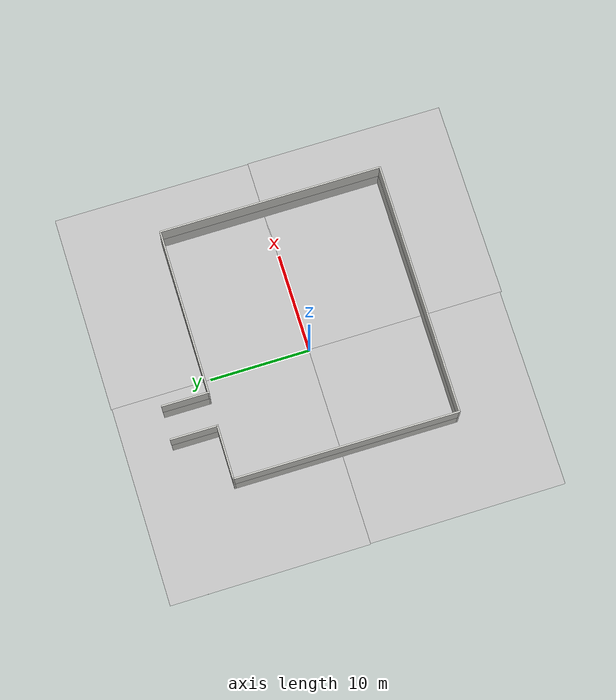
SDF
<sdf version="1.7">
 <world name="default">
  <light name="sun" type="directional">
   <pose>0 0 10 0 -0 0</pose>
   <diffuse>0.8 0.8 0.8 1</diffuse>
   <specular>0.2 0.2 0.2 1</specular>
   <attenuation>
    <range>1000</range>
    <constant>0.9</constant>
    <linear>0.01</linear>
    <quadratic>0.001</quadratic>
   </attenuation>
   <direction>-0.5 0.1 -0.9</direction>
   <spot><inner_angle>0</inner_angle><outer_angle>0</outer_angle><falloff>0</falloff></spot>
  </light>
  <gravity>0 0 -9.8</gravity>
  <magnetic_field>6e-06 2.3e-05 -4.2e-05</magnetic_field>
  <atmosphere type="adiabatic"/>
  <physics type="ode">
   <max_step_size>0.001</max_step_size>
   <real_time_factor>1</real_time_factor>
   <real_time_update_rate>1000</real_time_update_rate>
  </physics>
  <scene><ambient>0.4 0.4 0.4 1</ambient><background>0.7 0.7 0.7 1</background><shadows>1</shadows></scene>
  <audio><device>default</device></audio>
  <spherical_coordinates>
   <surface_model>EARTH_WGS84</surface_model>
   <latitude_deg>0</latitude_deg>
   <longitude_deg>0</longitude_deg>
   <elevation>0</elevation>
   <heading_deg>0</heading_deg>
  </spherical_coordinates>
  <model name="walls">
   <pose>1.76011 1.90455 0 0 -0 1.567</pose>
   <link name="Wall_22">
    <collision name="Wall_22_Collision">
     <geometry><box><size>22.3213 0.15 2.5</size></box></geometry>
     <pose>0 0 1.25 0 -0 0</pose>
    </collision>
    <visual name="Wall_22_Visual">
     <pose>0 0 1.25 0 -0 0</pose>
     <geometry><box><size>22.3213 0.15 2.5</size></box></geometry>
     <material>
      <script><uri>file://media/materials/scripts/gazebo.material</uri><name>Gazebo/CeilingTiled</name></script>
      <ambient>1 1 1 1</ambient>
     </material>
     <meta><layer>0</layer></meta>
    </visual>
    <pose>-2.31337 -12.6443 0 0 -0 0.004826</pose>
   </link>
   <link name="Wall_23">
    <collision name="Wall_23_Collision">
     <geometry><box><size>16.75 0.15 2.5</size></box></geometry>
     <pose>0 0 1.25 0 -0 0</pose>
    </collision>
    <visual name="Wall_23_Visual">
     <pose>0 0 1.25 0 -0 0</pose>
     <geometry><box><size>16.75 0.15 2.5</size></box></geometry>
     <material>
      <script><uri>file://media/materials/scripts/gazebo.material</uri><name>Gazebo/CeilingTiled</name></script>
      <ambient>1 1 1 1</ambient>
     </material>
     <meta><layer>0</layer></meta>
    </visual>
    <pose>8.77214 -4.29078 0 0 -0 1.5708</pose>
   </link>
   <link name="Wall_24">
    <collision name="Wall_24_Collision">
     <geometry><box><size>4.75 0.15 2.5</size></box></geometry>
     <pose>0 0 1.25 0 -0 0</pose>
    </collision>
    <visual name="Wall_24_Visual">
     <pose>0 0 1.25 0 -0 0</pose>
     <geometry><box><size>4.75 0.15 2.5</size></box></geometry>
     <material>
      <script><uri>file://media/materials/scripts/gazebo.material</uri><name>Gazebo/CeilingTiled</name></script>
      <ambient>1 1 1 1</ambient>
     </material>
     <meta><layer>0</layer></meta>
    </visual>
    <pose>11.0721 4.00922 0 0 -0 0</pose>
   </link>
   <link name="Wall_26">
    <collision name="Wall_26_Collision">
     <geometry><box><size>4.75 0.15 2.5</size></box></geometry>
     <pose>0 0 1.25 0 -0 0</pose>
    </collision>
    <visual name="Wall_26_Visual">
     <pose>0 0 1.25 0 -0 0</pose>
     <geometry><box><size>4.75 0.15 2.5</size></box></geometry>
     <material>
      <script><uri>file://media/materials/scripts/gazebo.material</uri><name>Gazebo/CeilingTiled</name></script>
      <ambient>1 1 1 1</ambient>
     </material>
     <meta><layer>0</layer></meta>
    </visual>
    <pose>11.175 7.34814 0 0 -0 3.14159</pose>
   </link>
   <link name="Wall_27">
    <collision name="Wall_27_Collision">
     <geometry><box><size>5.5 0.15 2.5</size></box></geometry>
     <pose>0 0 1.25 0 -0 0</pose>
    </collision>
    <visual name="Wall_27_Visual">
     <pose>0 0 1.25 0 -0 0</pose>
     <geometry><box><size>5.5 0.15 2.5</size></box></geometry>
     <material>
      <script><uri>file://media/materials/scripts/gazebo.material</uri><name>Gazebo/CeilingTiled</name></script>
      <ambient>1 1 1 1</ambient>
     </material>
     <meta><layer>0</layer></meta>
    </visual>
    <pose>8.875 10.0231 0 0 -0 1.5708</pose>
   </link>
   <link name="Wall_28">
    <collision name="Wall_28_Collision">
     <geometry><box><size>22.5 0.15 2.5</size></box></geometry>
     <pose>0 0 1.25 0 -0 0</pose>
    </collision>
    <visual name="Wall_28_Visual">
     <pose>0 0 1.25 0 -0 0</pose>
     <geometry><box><size>22.5 0.15 2.5</size></box></geometry>
     <material>
      <script><uri>file://media/materials/scripts/gazebo.material</uri><name>Gazebo/CeilingTiled</name></script>
      <ambient>1 1 1 1</ambient>
     </material>
     <meta><layer>0</layer></meta>
    </visual>
    <pose>-2.3 12.6981 0 0 -0 3.14159</pose>
   </link>
   <link name="Wall_29">
    <collision name="Wall_29_Collision">
     <geometry><box><size>25.5 0.15 2.5</size></box></geometry>
     <pose>0 0 1.25 0 -0 0</pose>
    </collision>
    <visual name="Wall_29_Visual">
     <pose>0 0 1.25 0 -0 0</pose>
     <geometry><box><size>25.5 0.15 2.5</size></box></geometry>
     <material>
      <script><uri>file://media/materials/scripts/gazebo.material</uri><name>Gazebo/CeilingTiled</name></script>
      <ambient>1 1 1 1</ambient>
     </material>
     <meta><layer>0</layer></meta>
    </visual>
    <pose>-13.475 0.023145 0 0 -0 -1.5708</pose>
   </link>
   <static>1</static>
  </model>
  <model name="Floor_room">
   <link name="main">
    <pose>0 0 0.01 0 -0 0</pose>
    <collision name="main_Collision"><geometry><box><size>20 20 0.001</size></box></geometry></collision>
    <visual name="main_Visual">
     <geometry><box><size>20 20 0.001</size></box></geometry>
     <material>
      <script>
       <uri>model://Floor_room/materials/scripts</uri>
       <uri>model://Floor_room/materials/textures</uri>
       <name>floor_room</name>
      </script>
     </material>
    </visual>
   </link>
   <static>1</static>
   <pose>10.0186 10.1059 0 0 -0 0</pose>
  </model>
  <model name="Floor_room_0">
   <link name="main">
    <pose>0 0 0.01 0 -0 0</pose>
    <collision name="main_Collision"><geometry><box><size>20 20 0.001</size></box></geometry></collision>
    <visual name="main_Visual">
     <geometry><box><size>20 20 0.001</size></box></geometry>
     <material>
      <script>
       <uri>model://Floor_room/materials/scripts</uri>
       <uri>model://Floor_room/materials/textures</uri>
       <name>floor_room</name>
      </script>
     </material>
    </visual>
   </link>
   <static>1</static>
   <pose>10.0732 -9.81871 0 0 -0 0</pose>
  </model>
  <model name="Floor_room_1">
   <link name="main">
    <pose>0 0 0.01 0 -0 0</pose>
    <collision name="main_Collision"><geometry><box><size>20 20 0.001</size></box></geometry></collision>
    <visual name="main_Visual">
     <geometry><box><size>20 20 0.001</size></box></geometry>
     <material>
      <script>
       <uri>model://Floor_room/materials/scripts</uri>
       <uri>model://Floor_room/materials/textures</uri>
       <name>floor_room</name>
      </script>
     </material>
    </visual>
   </link>
   <static>1</static>
   <pose>-9.97267 10.0225 0 0 -0 0</pose>
  </model>
  <model name="Floor_room_2">
   <link name="main">
    <pose>0 0 0.01 0 -0 0</pose>
    <collision name="main_Collision"><geometry><box><size>20 20 0.001</size></box></geometry></collision>
    <visual name="main_Visual">
     <geometry><box><size>20 20 0.001</size></box></geometry>
     <material>
      <script>
       <uri>model://Floor_room/materials/scripts</uri>
       <uri>model://Floor_room/materials/textures</uri>
       <name>floor_room</name>
      </script>
     </material>
    </visual>
   </link>
   <static>1</static>
   <pose>-9.90099 -9.63803 0 0 -0 0</pose>
  </model>
  <model name="walls_0">
   <pose>1.72848 1.90651 2.4873 0 -0 1.56473</pose>
   <link name="Wall_22">
    <collision name="Wall_22_Collision">
     <geometry><box><size>22.3213 0.15 2.5</size></box></geometry>
     <pose>0 0 1.25 0 -0 0</pose>
    </collision>
    <visual name="Wall_22_Visual">
     <pose>0 0 1.25 0 -0 0</pose>
     <geometry><box><size>22.3213 0.15 2.5</size></box></geometry>
     <material>
      <script><uri>file://media/materials/scripts/gazebo.material</uri><name>Gazebo/CeilingTiled</name></script>
      <ambient>1 1 1 1</ambient>
     </material>
     <meta><layer>0</layer></meta>
    </visual>
    <pose>-2.31337 -12.6443 0 0 -0 0.004826</pose>
   </link>
   <link name="Wall_23">
    <collision name="Wall_23_Collision">
     <geometry><box><size>16.75 0.15 2.5</size></box></geometry>
     <pose>0 0 1.25 0 -0 0</pose>
    </collision>
    <visual name="Wall_23_Visual">
     <pose>0 0 1.25 0 -0 0</pose>
     <geometry><box><size>16.75 0.15 2.5</size></box></geometry>
     <material>
      <script><uri>file://media/materials/scripts/gazebo.material</uri><name>Gazebo/CeilingTiled</name></script>
      <ambient>1 1 1 1</ambient>
     </material>
     <meta><layer>0</layer></meta>
    </visual>
    <pose>8.77214 -4.29078 0 0 -0 1.5708</pose>
   </link>
   <link name="Wall_24">
    <collision name="Wall_24_Collision">
     <geometry><box><size>4.75 0.15 2.5</size></box></geometry>
     <pose>0 0 1.25 0 -0 0</pose>
    </collision>
    <visual name="Wall_24_Visual">
     <pose>0 0 1.25 0 -0 0</pose>
     <geometry><box><size>4.75 0.15 2.5</size></box></geometry>
     <material>
      <script><uri>file://media/materials/scripts/gazebo.material</uri><name>Gazebo/CeilingTiled</name></script>
      <ambient>1 1 1 1</ambient>
     </material>
     <meta><layer>0</layer></meta>
    </visual>
    <pose>11.0721 4.00922 0 0 -0 0</pose>
   </link>
   <link name="Wall_26">
    <collision name="Wall_26_Collision">
     <geometry><box><size>4.75 0.15 2.5</size></box></geometry>
     <pose>0 0 1.25 0 -0 0</pose>
    </collision>
    <visual name="Wall_26_Visual">
     <pose>0 0 1.25 0 -0 0</pose>
     <geometry><box><size>4.75 0.15 2.5</size></box></geometry>
     <material>
      <script><uri>file://media/materials/scripts/gazebo.material</uri><name>Gazebo/CeilingTiled</name></script>
      <ambient>1 1 1 1</ambient>
     </material>
     <meta><layer>0</layer></meta>
    </visual>
    <pose>11.175 7.34814 0 0 -0 3.14159</pose>
   </link>
   <link name="Wall_27">
    <collision name="Wall_27_Collision">
     <geometry><box><size>5.5 0.15 2.5</size></box></geometry>
     <pose>0 0 1.25 0 -0 0</pose>
    </collision>
    <visual name="Wall_27_Visual">
     <pose>0 0 1.25 0 -0 0</pose>
     <geometry><box><size>5.5 0.15 2.5</size></box></geometry>
     <material>
      <script><uri>file://media/materials/scripts/gazebo.material</uri><name>Gazebo/CeilingTiled</name></script>
      <ambient>1 1 1 1</ambient>
     </material>
     <meta><layer>0</layer></meta>
    </visual>
    <pose>8.875 10.0231 0 0 -0 1.5708</pose>
   </link>
   <link name="Wall_28">
    <collision name="Wall_28_Collision">
     <geometry><box><size>22.5 0.15 2.5</size></box></geometry>
     <pose>0 0 1.25 0 -0 0</pose>
    </collision>
    <visual name="Wall_28_Visual">
     <pose>0 0 1.25 0 -0 0</pose>
     <geometry><box><size>22.5 0.15 2.5</size></box></geometry>
     <material>
      <script><uri>file://media/materials/scripts/gazebo.material</uri><name>Gazebo/CeilingTiled</name></script>
      <ambient>1 1 1 1</ambient>
     </material>
     <meta><layer>0</layer></meta>
    </visual>
    <pose>-2.3 12.6981 0 0 -0 3.14159</pose>
   </link>
   <link name="Wall_29">
    <collision name="Wall_29_Collision">
     <geometry><box><size>25.5 0.15 2.5</size></box></geometry>
     <pose>0 0 1.25 0 -0 0</pose>
    </collision>
    <visual name="Wall_29_Visual">
     <pose>0 0 1.25 0 -0 0</pose>
     <geometry><box><size>25.5 0.15 2.5</size></box></geometry>
     <material>
      <script><uri>file://media/materials/scripts/gazebo.material</uri><name>Gazebo/CeilingTiled</name></script>
      <ambient>1 1 1 1</ambient>
     </material>
     <meta><layer>0</layer></meta>
    </visual>
    <pose>-13.475 0.023145 0 0 -0 -1.5708</pose>
   </link>
   <static>1</static>
  </model>
 </world>
</sdf>
